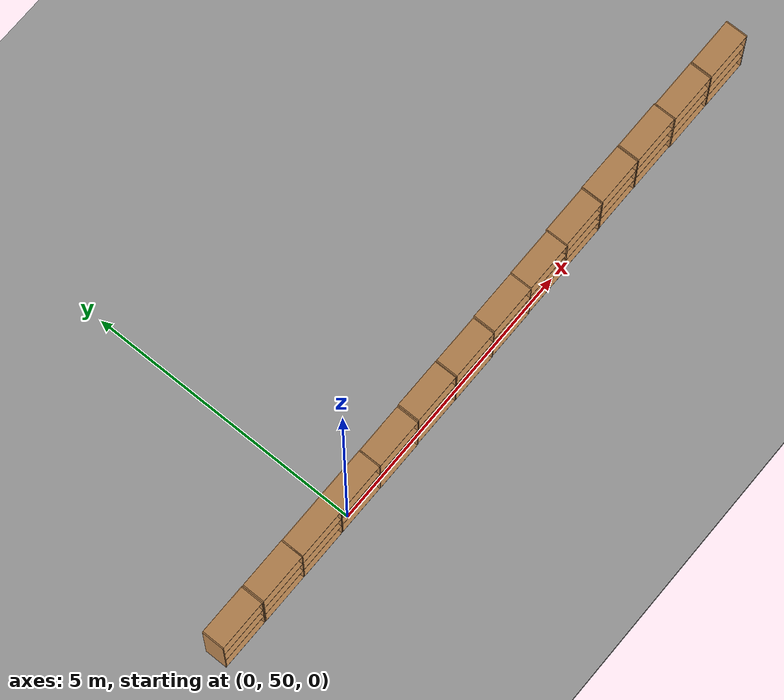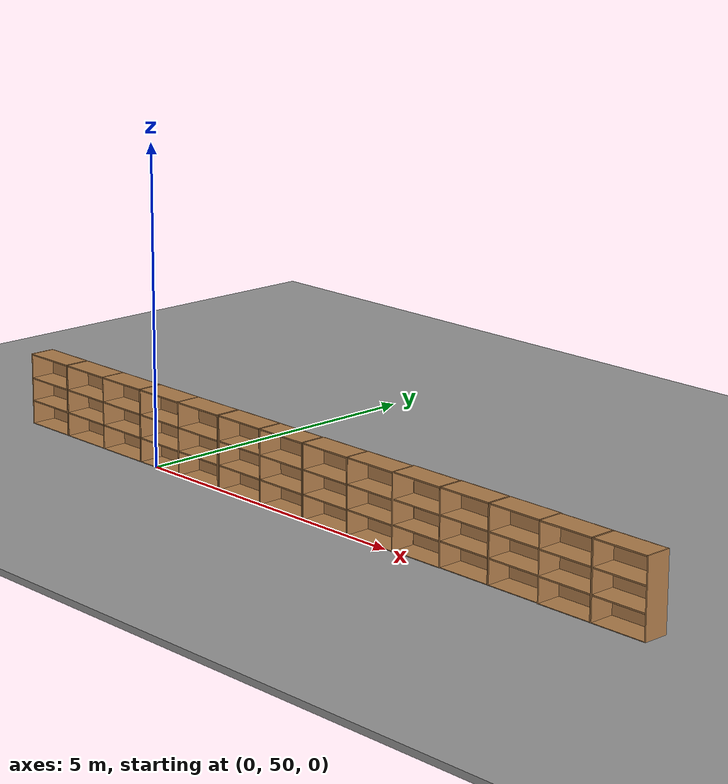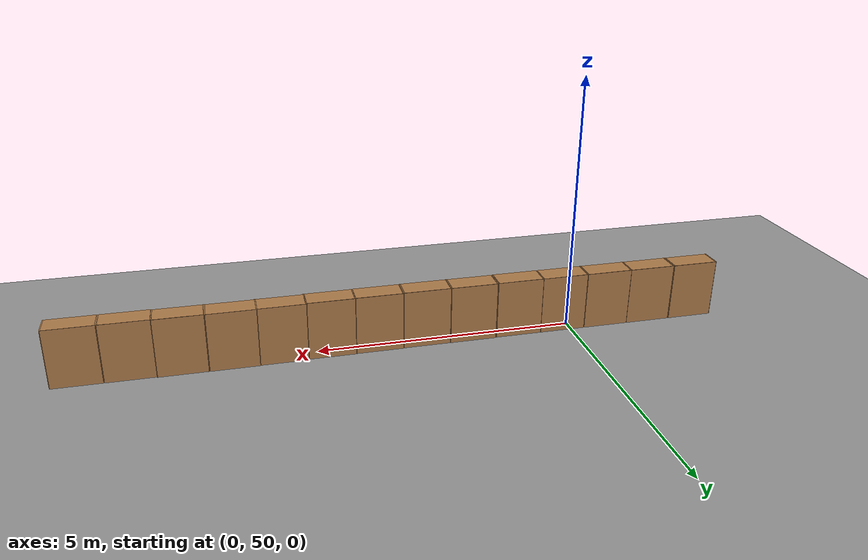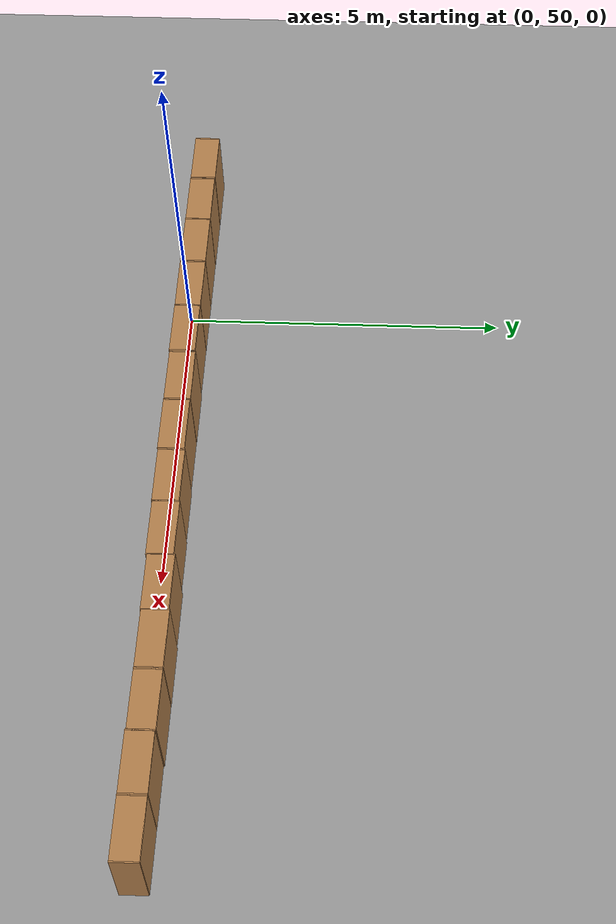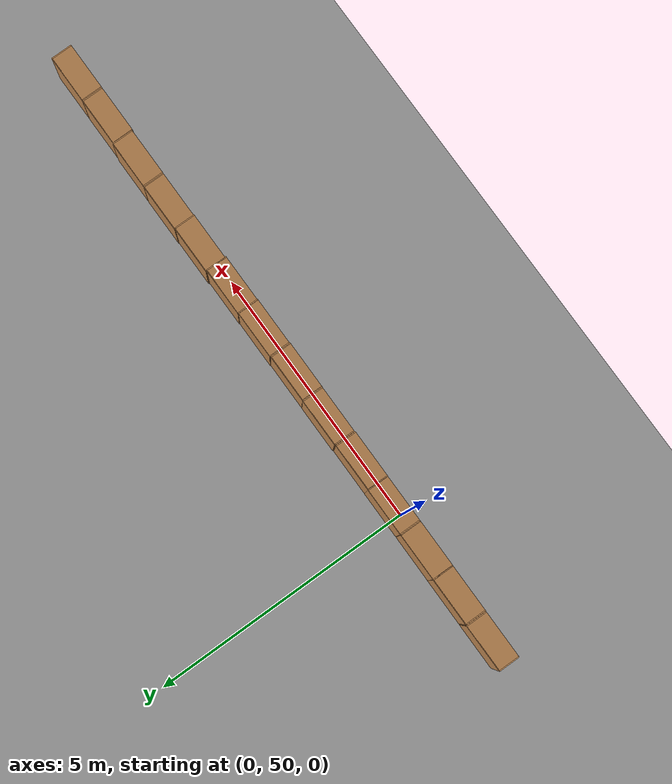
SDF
<sdf version="1.6">
 <world name="default">
  <model name="ground_plane">
   <static>1</static>
   <link name="link">
    <collision name="collision">
     <geometry><plane><normal>0 0 1</normal><size>100 100</size></plane></geometry>
     <surface><friction><ode><mu>100</mu><mu2>50</mu2></ode></friction></surface>
    </collision>
    <visual name="visual">
     <cast_shadows>0</cast_shadows>
     <geometry><plane><normal>0 0 1</normal><size>100 100</size></plane></geometry>
     <material>
      <script><uri>file://media/materials/scripts/gazebo.material</uri><name>Gazebo/Grey</name></script>
     </material>
    </visual>
   </link>
  </model>
  <model name="bookshelf_clone_clone_4">
   <static>1</static>
   <link name="link">
    <inertial><mass>1</mass></inertial>
    <collision name="back">
     <pose>0 0.005 0.6 0 -0 0</pose>
     <geometry><box><size>0.9 0.01 1.2</size></box></geometry>
    </collision>
    <visual name="visual1">
     <pose>0 0.005 0.6 0 -0 0</pose>
     <geometry><box><size>0.9 0.01 1.2</size></box></geometry>
     <material>
      <script><uri>file://media/materials/scripts/gazebo.material</uri><name>Gazebo/Wood</name></script>
     </material>
    </visual>
    <collision name="left_side">
     <pose>0.45 -0.195 0.6 0 -0 0</pose>
     <geometry><box><size>0.02 0.4 1.2</size></box></geometry>
    </collision>
    <visual name="visual2">
     <pose>0.45 -0.195 0.6 0 -0 0</pose>
     <geometry><box><size>0.02 0.4 1.2</size></box></geometry>
     <material>
      <script><uri>file://media/materials/scripts/gazebo.material</uri><name>Gazebo/Wood</name></script>
     </material>
    </visual>
    <collision name="right_side">
     <pose>-0.45 -0.195 0.6 0 -0 0</pose>
     <geometry><box><size>0.02 0.4 1.2</size></box></geometry>
    </collision>
    <visual name="visual3">
     <pose>-0.45 -0.195 0.6 0 -0 0</pose>
     <geometry><box><size>0.02 0.4 1.2</size></box></geometry>
     <material>
      <script><uri>file://media/materials/scripts/gazebo.material</uri><name>Gazebo/Wood</name></script>
     </material>
    </visual>
    <collision name="bottom">
     <pose>0 -0.195 0.03 0 -0 0</pose>
     <geometry><box><size>0.88 0.4 0.06</size></box></geometry>
    </collision>
    <visual name="visual4">
     <pose>0 -0.195 0.03 0 -0 0</pose>
     <geometry><box><size>0.88 0.4 0.06</size></box></geometry>
     <material>
      <script><uri>file://media/materials/scripts/gazebo.material</uri><name>Gazebo/Wood</name></script>
     </material>
    </visual>
    <collision name="top">
     <pose>0 -0.195 1.19 0 -0 0</pose>
     <geometry><box><size>0.88 0.4 0.02</size></box></geometry>
    </collision>
    <visual name="visual5">
     <pose>0 -0.195 1.19 0 -0 0</pose>
     <geometry><box><size>0.88 0.4 0.02</size></box></geometry>
     <material>
      <script><uri>file://media/materials/scripts/gazebo.material</uri><name>Gazebo/Wood</name></script>
     </material>
    </visual>
    <collision name="low_shelf">
     <pose>0 -0.195 0.43 0 -0 0</pose>
     <geometry><box><size>0.88 0.4 0.02</size></box></geometry>
    </collision>
    <visual name="visual6">
     <pose>0 -0.195 0.43 0 -0 0</pose>
     <geometry><box><size>0.88 0.4 0.02</size></box></geometry>
     <material>
      <script><uri>file://media/materials/scripts/gazebo.material</uri><name>Gazebo/Wood</name></script>
     </material>
    </visual>
    <collision name="high_shelf">
     <pose>0 -0.195 0.8 0 -0 0</pose>
     <geometry><box><size>0.88 0.4 0.02</size></box></geometry>
    </collision>
    <visual name="visual7">
     <pose>0 -0.195 0.8 0 -0 0</pose>
     <geometry><box><size>0.88 0.4 0.02</size></box></geometry>
     <material>
      <script><uri>file://media/materials/scripts/gazebo.material</uri><name>Gazebo/Wood</name></script>
     </material>
    </visual>
   </link>
   <pose>-2.53043 50.2921 0 0 -0 0</pose>
  </model>
  <model name="bookshelf_clone_clone_5">
   <static>1</static>
   <link name="link">
    <inertial><mass>1</mass></inertial>
    <collision name="back">
     <pose>0 0.005 0.6 0 -0 0</pose>
     <geometry><box><size>0.9 0.01 1.2</size></box></geometry>
    </collision>
    <visual name="visual1">
     <pose>0 0.005 0.6 0 -0 0</pose>
     <geometry><box><size>0.9 0.01 1.2</size></box></geometry>
     <material>
      <script><uri>file://media/materials/scripts/gazebo.material</uri><name>Gazebo/Wood</name></script>
     </material>
    </visual>
    <collision name="left_side">
     <pose>0.45 -0.195 0.6 0 -0 0</pose>
     <geometry><box><size>0.02 0.4 1.2</size></box></geometry>
    </collision>
    <visual name="visual2">
     <pose>0.45 -0.195 0.6 0 -0 0</pose>
     <geometry><box><size>0.02 0.4 1.2</size></box></geometry>
     <material>
      <script><uri>file://media/materials/scripts/gazebo.material</uri><name>Gazebo/Wood</name></script>
     </material>
    </visual>
    <collision name="right_side">
     <pose>-0.45 -0.195 0.6 0 -0 0</pose>
     <geometry><box><size>0.02 0.4 1.2</size></box></geometry>
    </collision>
    <visual name="visual3">
     <pose>-0.45 -0.195 0.6 0 -0 0</pose>
     <geometry><box><size>0.02 0.4 1.2</size></box></geometry>
     <material>
      <script><uri>file://media/materials/scripts/gazebo.material</uri><name>Gazebo/Wood</name></script>
     </material>
    </visual>
    <collision name="bottom">
     <pose>0 -0.195 0.03 0 -0 0</pose>
     <geometry><box><size>0.88 0.4 0.06</size></box></geometry>
    </collision>
    <visual name="visual4">
     <pose>0 -0.195 0.03 0 -0 0</pose>
     <geometry><box><size>0.88 0.4 0.06</size></box></geometry>
     <material>
      <script><uri>file://media/materials/scripts/gazebo.material</uri><name>Gazebo/Wood</name></script>
     </material>
    </visual>
    <collision name="top">
     <pose>0 -0.195 1.19 0 -0 0</pose>
     <geometry><box><size>0.88 0.4 0.02</size></box></geometry>
    </collision>
    <visual name="visual5">
     <pose>0 -0.195 1.19 0 -0 0</pose>
     <geometry><box><size>0.88 0.4 0.02</size></box></geometry>
     <material>
      <script><uri>file://media/materials/scripts/gazebo.material</uri><name>Gazebo/Wood</name></script>
     </material>
    </visual>
    <collision name="low_shelf">
     <pose>0 -0.195 0.43 0 -0 0</pose>
     <geometry><box><size>0.88 0.4 0.02</size></box></geometry>
    </collision>
    <visual name="visual6">
     <pose>0 -0.195 0.43 0 -0 0</pose>
     <geometry><box><size>0.88 0.4 0.02</size></box></geometry>
     <material>
      <script><uri>file://media/materials/scripts/gazebo.material</uri><name>Gazebo/Wood</name></script>
     </material>
    </visual>
    <collision name="high_shelf">
     <pose>0 -0.195 0.8 0 -0 0</pose>
     <geometry><box><size>0.88 0.4 0.02</size></box></geometry>
    </collision>
    <visual name="visual7">
     <pose>0 -0.195 0.8 0 -0 0</pose>
     <geometry><box><size>0.88 0.4 0.02</size></box></geometry>
     <material>
      <script><uri>file://media/materials/scripts/gazebo.material</uri><name>Gazebo/Wood</name></script>
     </material>
    </visual>
   </link>
   <pose>-1.60843 50.2898 0 0 -0 0</pose>
  </model>
  <model name="bookshelf_clone_clone_6">
   <static>1</static>
   <link name="link">
    <inertial><mass>1</mass></inertial>
    <collision name="back">
     <pose>0 0.005 0.6 0 -0 0</pose>
     <geometry><box><size>0.9 0.01 1.2</size></box></geometry>
    </collision>
    <visual name="visual1">
     <pose>0 0.005 0.6 0 -0 0</pose>
     <geometry><box><size>0.9 0.01 1.2</size></box></geometry>
     <material>
      <script><uri>file://media/materials/scripts/gazebo.material</uri><name>Gazebo/Wood</name></script>
     </material>
    </visual>
    <collision name="left_side">
     <pose>0.45 -0.195 0.6 0 -0 0</pose>
     <geometry><box><size>0.02 0.4 1.2</size></box></geometry>
    </collision>
    <visual name="visual2">
     <pose>0.45 -0.195 0.6 0 -0 0</pose>
     <geometry><box><size>0.02 0.4 1.2</size></box></geometry>
     <material>
      <script><uri>file://media/materials/scripts/gazebo.material</uri><name>Gazebo/Wood</name></script>
     </material>
    </visual>
    <collision name="right_side">
     <pose>-0.45 -0.195 0.6 0 -0 0</pose>
     <geometry><box><size>0.02 0.4 1.2</size></box></geometry>
    </collision>
    <visual name="visual3">
     <pose>-0.45 -0.195 0.6 0 -0 0</pose>
     <geometry><box><size>0.02 0.4 1.2</size></box></geometry>
     <material>
      <script><uri>file://media/materials/scripts/gazebo.material</uri><name>Gazebo/Wood</name></script>
     </material>
    </visual>
    <collision name="bottom">
     <pose>0 -0.195 0.03 0 -0 0</pose>
     <geometry><box><size>0.88 0.4 0.06</size></box></geometry>
    </collision>
    <visual name="visual4">
     <pose>0 -0.195 0.03 0 -0 0</pose>
     <geometry><box><size>0.88 0.4 0.06</size></box></geometry>
     <material>
      <script><uri>file://media/materials/scripts/gazebo.material</uri><name>Gazebo/Wood</name></script>
     </material>
    </visual>
    <collision name="top">
     <pose>0 -0.195 1.19 0 -0 0</pose>
     <geometry><box><size>0.88 0.4 0.02</size></box></geometry>
    </collision>
    <visual name="visual5">
     <pose>0 -0.195 1.19 0 -0 0</pose>
     <geometry><box><size>0.88 0.4 0.02</size></box></geometry>
     <material>
      <script><uri>file://media/materials/scripts/gazebo.material</uri><name>Gazebo/Wood</name></script>
     </material>
    </visual>
    <collision name="low_shelf">
     <pose>0 -0.195 0.43 0 -0 0</pose>
     <geometry><box><size>0.88 0.4 0.02</size></box></geometry>
    </collision>
    <visual name="visual6">
     <pose>0 -0.195 0.43 0 -0 0</pose>
     <geometry><box><size>0.88 0.4 0.02</size></box></geometry>
     <material>
      <script><uri>file://media/materials/scripts/gazebo.material</uri><name>Gazebo/Wood</name></script>
     </material>
    </visual>
    <collision name="high_shelf">
     <pose>0 -0.195 0.8 0 -0 0</pose>
     <geometry><box><size>0.88 0.4 0.02</size></box></geometry>
    </collision>
    <visual name="visual7">
     <pose>0 -0.195 0.8 0 -0 0</pose>
     <geometry><box><size>0.88 0.4 0.02</size></box></geometry>
     <material>
      <script><uri>file://media/materials/scripts/gazebo.material</uri><name>Gazebo/Wood</name></script>
     </material>
    </visual>
   </link>
   <pose>-0.705048 50.2874 0 0 -0 0</pose>
  </model>
  <model name="bookshelf_clone_clone_7">
   <static>1</static>
   <link name="link">
    <inertial><mass>1</mass></inertial>
    <collision name="back">
     <pose>0 0.005 0.6 0 -0 0</pose>
     <geometry><box><size>0.9 0.01 1.2</size></box></geometry>
    </collision>
    <visual name="visual1">
     <pose>0 0.005 0.6 0 -0 0</pose>
     <geometry><box><size>0.9 0.01 1.2</size></box></geometry>
     <material>
      <script><uri>file://media/materials/scripts/gazebo.material</uri><name>Gazebo/Wood</name></script>
     </material>
    </visual>
    <collision name="left_side">
     <pose>0.45 -0.195 0.6 0 -0 0</pose>
     <geometry><box><size>0.02 0.4 1.2</size></box></geometry>
    </collision>
    <visual name="visual2">
     <pose>0.45 -0.195 0.6 0 -0 0</pose>
     <geometry><box><size>0.02 0.4 1.2</size></box></geometry>
     <material>
      <script><uri>file://media/materials/scripts/gazebo.material</uri><name>Gazebo/Wood</name></script>
     </material>
    </visual>
    <collision name="right_side">
     <pose>-0.45 -0.195 0.6 0 -0 0</pose>
     <geometry><box><size>0.02 0.4 1.2</size></box></geometry>
    </collision>
    <visual name="visual3">
     <pose>-0.45 -0.195 0.6 0 -0 0</pose>
     <geometry><box><size>0.02 0.4 1.2</size></box></geometry>
     <material>
      <script><uri>file://media/materials/scripts/gazebo.material</uri><name>Gazebo/Wood</name></script>
     </material>
    </visual>
    <collision name="bottom">
     <pose>0 -0.195 0.03 0 -0 0</pose>
     <geometry><box><size>0.88 0.4 0.06</size></box></geometry>
    </collision>
    <visual name="visual4">
     <pose>0 -0.195 0.03 0 -0 0</pose>
     <geometry><box><size>0.88 0.4 0.06</size></box></geometry>
     <material>
      <script><uri>file://media/materials/scripts/gazebo.material</uri><name>Gazebo/Wood</name></script>
     </material>
    </visual>
    <collision name="top">
     <pose>0 -0.195 1.19 0 -0 0</pose>
     <geometry><box><size>0.88 0.4 0.02</size></box></geometry>
    </collision>
    <visual name="visual5">
     <pose>0 -0.195 1.19 0 -0 0</pose>
     <geometry><box><size>0.88 0.4 0.02</size></box></geometry>
     <material>
      <script><uri>file://media/materials/scripts/gazebo.material</uri><name>Gazebo/Wood</name></script>
     </material>
    </visual>
    <collision name="low_shelf">
     <pose>0 -0.195 0.43 0 -0 0</pose>
     <geometry><box><size>0.88 0.4 0.02</size></box></geometry>
    </collision>
    <visual name="visual6">
     <pose>0 -0.195 0.43 0 -0 0</pose>
     <geometry><box><size>0.88 0.4 0.02</size></box></geometry>
     <material>
      <script><uri>file://media/materials/scripts/gazebo.material</uri><name>Gazebo/Wood</name></script>
     </material>
    </visual>
    <collision name="high_shelf">
     <pose>0 -0.195 0.8 0 -0 0</pose>
     <geometry><box><size>0.88 0.4 0.02</size></box></geometry>
    </collision>
    <visual name="visual7">
     <pose>0 -0.195 0.8 0 -0 0</pose>
     <geometry><box><size>0.88 0.4 0.02</size></box></geometry>
     <material>
      <script><uri>file://media/materials/scripts/gazebo.material</uri><name>Gazebo/Wood</name></script>
     </material>
    </visual>
   </link>
   <pose>0.208745 50.2879 0 0 -0 0</pose>
  </model>
  <model name="bookshelf_clone_clone_8">
   <static>1</static>
   <link name="link">
    <inertial><mass>1</mass></inertial>
    <collision name="back">
     <pose>0 0.005 0.6 0 -0 0</pose>
     <geometry><box><size>0.9 0.01 1.2</size></box></geometry>
    </collision>
    <visual name="visual1">
     <pose>0 0.005 0.6 0 -0 0</pose>
     <geometry><box><size>0.9 0.01 1.2</size></box></geometry>
     <material>
      <script><uri>file://media/materials/scripts/gazebo.material</uri><name>Gazebo/Wood</name></script>
     </material>
    </visual>
    <collision name="left_side">
     <pose>0.45 -0.195 0.6 0 -0 0</pose>
     <geometry><box><size>0.02 0.4 1.2</size></box></geometry>
    </collision>
    <visual name="visual2">
     <pose>0.45 -0.195 0.6 0 -0 0</pose>
     <geometry><box><size>0.02 0.4 1.2</size></box></geometry>
     <material>
      <script><uri>file://media/materials/scripts/gazebo.material</uri><name>Gazebo/Wood</name></script>
     </material>
    </visual>
    <collision name="right_side">
     <pose>-0.45 -0.195 0.6 0 -0 0</pose>
     <geometry><box><size>0.02 0.4 1.2</size></box></geometry>
    </collision>
    <visual name="visual3">
     <pose>-0.45 -0.195 0.6 0 -0 0</pose>
     <geometry><box><size>0.02 0.4 1.2</size></box></geometry>
     <material>
      <script><uri>file://media/materials/scripts/gazebo.material</uri><name>Gazebo/Wood</name></script>
     </material>
    </visual>
    <collision name="bottom">
     <pose>0 -0.195 0.03 0 -0 0</pose>
     <geometry><box><size>0.88 0.4 0.06</size></box></geometry>
    </collision>
    <visual name="visual4">
     <pose>0 -0.195 0.03 0 -0 0</pose>
     <geometry><box><size>0.88 0.4 0.06</size></box></geometry>
     <material>
      <script><uri>file://media/materials/scripts/gazebo.material</uri><name>Gazebo/Wood</name></script>
     </material>
    </visual>
    <collision name="top">
     <pose>0 -0.195 1.19 0 -0 0</pose>
     <geometry><box><size>0.88 0.4 0.02</size></box></geometry>
    </collision>
    <visual name="visual5">
     <pose>0 -0.195 1.19 0 -0 0</pose>
     <geometry><box><size>0.88 0.4 0.02</size></box></geometry>
     <material>
      <script><uri>file://media/materials/scripts/gazebo.material</uri><name>Gazebo/Wood</name></script>
     </material>
    </visual>
    <collision name="low_shelf">
     <pose>0 -0.195 0.43 0 -0 0</pose>
     <geometry><box><size>0.88 0.4 0.02</size></box></geometry>
    </collision>
    <visual name="visual6">
     <pose>0 -0.195 0.43 0 -0 0</pose>
     <geometry><box><size>0.88 0.4 0.02</size></box></geometry>
     <material>
      <script><uri>file://media/materials/scripts/gazebo.material</uri><name>Gazebo/Wood</name></script>
     </material>
    </visual>
    <collision name="high_shelf">
     <pose>0 -0.195 0.8 0 -0 0</pose>
     <geometry><box><size>0.88 0.4 0.02</size></box></geometry>
    </collision>
    <visual name="visual7">
     <pose>0 -0.195 0.8 0 -0 0</pose>
     <geometry><box><size>0.88 0.4 0.02</size></box></geometry>
     <material>
      <script><uri>file://media/materials/scripts/gazebo.material</uri><name>Gazebo/Wood</name></script>
     </material>
    </visual>
   </link>
   <pose>1.1123 50.2856 0 0 -0 0</pose>
  </model>
  <model name="bookshelf_clone_clone_9">
   <static>1</static>
   <link name="link">
    <inertial><mass>1</mass></inertial>
    <collision name="back">
     <pose>0 0.005 0.6 0 -0 0</pose>
     <geometry><box><size>0.9 0.01 1.2</size></box></geometry>
    </collision>
    <visual name="visual1">
     <pose>0 0.005 0.6 0 -0 0</pose>
     <geometry><box><size>0.9 0.01 1.2</size></box></geometry>
     <material>
      <script><uri>file://media/materials/scripts/gazebo.material</uri><name>Gazebo/Wood</name></script>
     </material>
    </visual>
    <collision name="left_side">
     <pose>0.45 -0.195 0.6 0 -0 0</pose>
     <geometry><box><size>0.02 0.4 1.2</size></box></geometry>
    </collision>
    <visual name="visual2">
     <pose>0.45 -0.195 0.6 0 -0 0</pose>
     <geometry><box><size>0.02 0.4 1.2</size></box></geometry>
     <material>
      <script><uri>file://media/materials/scripts/gazebo.material</uri><name>Gazebo/Wood</name></script>
     </material>
    </visual>
    <collision name="right_side">
     <pose>-0.45 -0.195 0.6 0 -0 0</pose>
     <geometry><box><size>0.02 0.4 1.2</size></box></geometry>
    </collision>
    <visual name="visual3">
     <pose>-0.45 -0.195 0.6 0 -0 0</pose>
     <geometry><box><size>0.02 0.4 1.2</size></box></geometry>
     <material>
      <script><uri>file://media/materials/scripts/gazebo.material</uri><name>Gazebo/Wood</name></script>
     </material>
    </visual>
    <collision name="bottom">
     <pose>0 -0.195 0.03 0 -0 0</pose>
     <geometry><box><size>0.88 0.4 0.06</size></box></geometry>
    </collision>
    <visual name="visual4">
     <pose>0 -0.195 0.03 0 -0 0</pose>
     <geometry><box><size>0.88 0.4 0.06</size></box></geometry>
     <material>
      <script><uri>file://media/materials/scripts/gazebo.material</uri><name>Gazebo/Wood</name></script>
     </material>
    </visual>
    <collision name="top">
     <pose>0 -0.195 1.19 0 -0 0</pose>
     <geometry><box><size>0.88 0.4 0.02</size></box></geometry>
    </collision>
    <visual name="visual5">
     <pose>0 -0.195 1.19 0 -0 0</pose>
     <geometry><box><size>0.88 0.4 0.02</size></box></geometry>
     <material>
      <script><uri>file://media/materials/scripts/gazebo.material</uri><name>Gazebo/Wood</name></script>
     </material>
    </visual>
    <collision name="low_shelf">
     <pose>0 -0.195 0.43 0 -0 0</pose>
     <geometry><box><size>0.88 0.4 0.02</size></box></geometry>
    </collision>
    <visual name="visual6">
     <pose>0 -0.195 0.43 0 -0 0</pose>
     <geometry><box><size>0.88 0.4 0.02</size></box></geometry>
     <material>
      <script><uri>file://media/materials/scripts/gazebo.material</uri><name>Gazebo/Wood</name></script>
     </material>
    </visual>
    <collision name="high_shelf">
     <pose>0 -0.195 0.8 0 -0 0</pose>
     <geometry><box><size>0.88 0.4 0.02</size></box></geometry>
    </collision>
    <visual name="visual7">
     <pose>0 -0.195 0.8 0 -0 0</pose>
     <geometry><box><size>0.88 0.4 0.02</size></box></geometry>
     <material>
      <script><uri>file://media/materials/scripts/gazebo.material</uri><name>Gazebo/Wood</name></script>
     </material>
    </visual>
   </link>
   <pose>2.03547 50.2951 0 0 -0 0</pose>
  </model>
  <model name="bookshelf_clone_clone_10">
   <static>1</static>
   <link name="link">
    <inertial><mass>1</mass></inertial>
    <collision name="back">
     <pose>0 0.005 0.6 0 -0 0</pose>
     <geometry><box><size>0.9 0.01 1.2</size></box></geometry>
    </collision>
    <visual name="visual1">
     <pose>0 0.005 0.6 0 -0 0</pose>
     <geometry><box><size>0.9 0.01 1.2</size></box></geometry>
     <material>
      <script><uri>file://media/materials/scripts/gazebo.material</uri><name>Gazebo/Wood</name></script>
     </material>
    </visual>
    <collision name="left_side">
     <pose>0.45 -0.195 0.6 0 -0 0</pose>
     <geometry><box><size>0.02 0.4 1.2</size></box></geometry>
    </collision>
    <visual name="visual2">
     <pose>0.45 -0.195 0.6 0 -0 0</pose>
     <geometry><box><size>0.02 0.4 1.2</size></box></geometry>
     <material>
      <script><uri>file://media/materials/scripts/gazebo.material</uri><name>Gazebo/Wood</name></script>
     </material>
    </visual>
    <collision name="right_side">
     <pose>-0.45 -0.195 0.6 0 -0 0</pose>
     <geometry><box><size>0.02 0.4 1.2</size></box></geometry>
    </collision>
    <visual name="visual3">
     <pose>-0.45 -0.195 0.6 0 -0 0</pose>
     <geometry><box><size>0.02 0.4 1.2</size></box></geometry>
     <material>
      <script><uri>file://media/materials/scripts/gazebo.material</uri><name>Gazebo/Wood</name></script>
     </material>
    </visual>
    <collision name="bottom">
     <pose>0 -0.195 0.03 0 -0 0</pose>
     <geometry><box><size>0.88 0.4 0.06</size></box></geometry>
    </collision>
    <visual name="visual4">
     <pose>0 -0.195 0.03 0 -0 0</pose>
     <geometry><box><size>0.88 0.4 0.06</size></box></geometry>
     <material>
      <script><uri>file://media/materials/scripts/gazebo.material</uri><name>Gazebo/Wood</name></script>
     </material>
    </visual>
    <collision name="top">
     <pose>0 -0.195 1.19 0 -0 0</pose>
     <geometry><box><size>0.88 0.4 0.02</size></box></geometry>
    </collision>
    <visual name="visual5">
     <pose>0 -0.195 1.19 0 -0 0</pose>
     <geometry><box><size>0.88 0.4 0.02</size></box></geometry>
     <material>
      <script><uri>file://media/materials/scripts/gazebo.material</uri><name>Gazebo/Wood</name></script>
     </material>
    </visual>
    <collision name="low_shelf">
     <pose>0 -0.195 0.43 0 -0 0</pose>
     <geometry><box><size>0.88 0.4 0.02</size></box></geometry>
    </collision>
    <visual name="visual6">
     <pose>0 -0.195 0.43 0 -0 0</pose>
     <geometry><box><size>0.88 0.4 0.02</size></box></geometry>
     <material>
      <script><uri>file://media/materials/scripts/gazebo.material</uri><name>Gazebo/Wood</name></script>
     </material>
    </visual>
    <collision name="high_shelf">
     <pose>0 -0.195 0.8 0 -0 0</pose>
     <geometry><box><size>0.88 0.4 0.02</size></box></geometry>
    </collision>
    <visual name="visual7">
     <pose>0 -0.195 0.8 0 -0 0</pose>
     <geometry><box><size>0.88 0.4 0.02</size></box></geometry>
     <material>
      <script><uri>file://media/materials/scripts/gazebo.material</uri><name>Gazebo/Wood</name></script>
     </material>
    </visual>
   </link>
   <pose>2.94899 50.2925 0 0 -0 0</pose>
  </model>
  <model name="bookshelf_clone_clone_11">
   <static>1</static>
   <link name="link">
    <inertial><mass>1</mass></inertial>
    <collision name="back">
     <pose>0 0.005 0.6 0 -0 0</pose>
     <geometry><box><size>0.9 0.01 1.2</size></box></geometry>
    </collision>
    <visual name="visual1">
     <pose>0 0.005 0.6 0 -0 0</pose>
     <geometry><box><size>0.9 0.01 1.2</size></box></geometry>
     <material>
      <script><uri>file://media/materials/scripts/gazebo.material</uri><name>Gazebo/Wood</name></script>
     </material>
    </visual>
    <collision name="left_side">
     <pose>0.45 -0.195 0.6 0 -0 0</pose>
     <geometry><box><size>0.02 0.4 1.2</size></box></geometry>
    </collision>
    <visual name="visual2">
     <pose>0.45 -0.195 0.6 0 -0 0</pose>
     <geometry><box><size>0.02 0.4 1.2</size></box></geometry>
     <material>
      <script><uri>file://media/materials/scripts/gazebo.material</uri><name>Gazebo/Wood</name></script>
     </material>
    </visual>
    <collision name="right_side">
     <pose>-0.45 -0.195 0.6 0 -0 0</pose>
     <geometry><box><size>0.02 0.4 1.2</size></box></geometry>
    </collision>
    <visual name="visual3">
     <pose>-0.45 -0.195 0.6 0 -0 0</pose>
     <geometry><box><size>0.02 0.4 1.2</size></box></geometry>
     <material>
      <script><uri>file://media/materials/scripts/gazebo.material</uri><name>Gazebo/Wood</name></script>
     </material>
    </visual>
    <collision name="bottom">
     <pose>0 -0.195 0.03 0 -0 0</pose>
     <geometry><box><size>0.88 0.4 0.06</size></box></geometry>
    </collision>
    <visual name="visual4">
     <pose>0 -0.195 0.03 0 -0 0</pose>
     <geometry><box><size>0.88 0.4 0.06</size></box></geometry>
     <material>
      <script><uri>file://media/materials/scripts/gazebo.material</uri><name>Gazebo/Wood</name></script>
     </material>
    </visual>
    <collision name="top">
     <pose>0 -0.195 1.19 0 -0 0</pose>
     <geometry><box><size>0.88 0.4 0.02</size></box></geometry>
    </collision>
    <visual name="visual5">
     <pose>0 -0.195 1.19 0 -0 0</pose>
     <geometry><box><size>0.88 0.4 0.02</size></box></geometry>
     <material>
      <script><uri>file://media/materials/scripts/gazebo.material</uri><name>Gazebo/Wood</name></script>
     </material>
    </visual>
    <collision name="low_shelf">
     <pose>0 -0.195 0.43 0 -0 0</pose>
     <geometry><box><size>0.88 0.4 0.02</size></box></geometry>
    </collision>
    <visual name="visual6">
     <pose>0 -0.195 0.43 0 -0 0</pose>
     <geometry><box><size>0.88 0.4 0.02</size></box></geometry>
     <material>
      <script><uri>file://media/materials/scripts/gazebo.material</uri><name>Gazebo/Wood</name></script>
     </material>
    </visual>
    <collision name="high_shelf">
     <pose>0 -0.195 0.8 0 -0 0</pose>
     <geometry><box><size>0.88 0.4 0.02</size></box></geometry>
    </collision>
    <visual name="visual7">
     <pose>0 -0.195 0.8 0 -0 0</pose>
     <geometry><box><size>0.88 0.4 0.02</size></box></geometry>
     <material>
      <script><uri>file://media/materials/scripts/gazebo.material</uri><name>Gazebo/Wood</name></script>
     </material>
    </visual>
   </link>
   <pose>3.86479 50.3016 0 0 -0 0</pose>
  </model>
  <model name="bookshelf_clone_clone_12">
   <static>1</static>
   <link name="link">
    <inertial><mass>1</mass></inertial>
    <collision name="back">
     <pose>0 0.005 0.6 0 -0 0</pose>
     <geometry><box><size>0.9 0.01 1.2</size></box></geometry>
    </collision>
    <visual name="visual1">
     <pose>0 0.005 0.6 0 -0 0</pose>
     <geometry><box><size>0.9 0.01 1.2</size></box></geometry>
     <material>
      <script><uri>file://media/materials/scripts/gazebo.material</uri><name>Gazebo/Wood</name></script>
     </material>
    </visual>
    <collision name="left_side">
     <pose>0.45 -0.195 0.6 0 -0 0</pose>
     <geometry><box><size>0.02 0.4 1.2</size></box></geometry>
    </collision>
    <visual name="visual2">
     <pose>0.45 -0.195 0.6 0 -0 0</pose>
     <geometry><box><size>0.02 0.4 1.2</size></box></geometry>
     <material>
      <script><uri>file://media/materials/scripts/gazebo.material</uri><name>Gazebo/Wood</name></script>
     </material>
    </visual>
    <collision name="right_side">
     <pose>-0.45 -0.195 0.6 0 -0 0</pose>
     <geometry><box><size>0.02 0.4 1.2</size></box></geometry>
    </collision>
    <visual name="visual3">
     <pose>-0.45 -0.195 0.6 0 -0 0</pose>
     <geometry><box><size>0.02 0.4 1.2</size></box></geometry>
     <material>
      <script><uri>file://media/materials/scripts/gazebo.material</uri><name>Gazebo/Wood</name></script>
     </material>
    </visual>
    <collision name="bottom">
     <pose>0 -0.195 0.03 0 -0 0</pose>
     <geometry><box><size>0.88 0.4 0.06</size></box></geometry>
    </collision>
    <visual name="visual4">
     <pose>0 -0.195 0.03 0 -0 0</pose>
     <geometry><box><size>0.88 0.4 0.06</size></box></geometry>
     <material>
      <script><uri>file://media/materials/scripts/gazebo.material</uri><name>Gazebo/Wood</name></script>
     </material>
    </visual>
    <collision name="top">
     <pose>0 -0.195 1.19 0 -0 0</pose>
     <geometry><box><size>0.88 0.4 0.02</size></box></geometry>
    </collision>
    <visual name="visual5">
     <pose>0 -0.195 1.19 0 -0 0</pose>
     <geometry><box><size>0.88 0.4 0.02</size></box></geometry>
     <material>
      <script><uri>file://media/materials/scripts/gazebo.material</uri><name>Gazebo/Wood</name></script>
     </material>
    </visual>
    <collision name="low_shelf">
     <pose>0 -0.195 0.43 0 -0 0</pose>
     <geometry><box><size>0.88 0.4 0.02</size></box></geometry>
    </collision>
    <visual name="visual6">
     <pose>0 -0.195 0.43 0 -0 0</pose>
     <geometry><box><size>0.88 0.4 0.02</size></box></geometry>
     <material>
      <script><uri>file://media/materials/scripts/gazebo.material</uri><name>Gazebo/Wood</name></script>
     </material>
    </visual>
    <collision name="high_shelf">
     <pose>0 -0.195 0.8 0 -0 0</pose>
     <geometry><box><size>0.88 0.4 0.02</size></box></geometry>
    </collision>
    <visual name="visual7">
     <pose>0 -0.195 0.8 0 -0 0</pose>
     <geometry><box><size>0.88 0.4 0.02</size></box></geometry>
     <material>
      <script><uri>file://media/materials/scripts/gazebo.material</uri><name>Gazebo/Wood</name></script>
     </material>
    </visual>
   </link>
   <pose>4.76824 50.3098 0 0 -0 0</pose>
  </model>
  <model name="bookshelf_clone_clone_13">
   <static>1</static>
   <link name="link">
    <inertial><mass>1</mass></inertial>
    <collision name="back">
     <pose>0 0.005 0.6 0 -0 0</pose>
     <geometry><box><size>0.9 0.01 1.2</size></box></geometry>
    </collision>
    <visual name="visual1">
     <pose>0 0.005 0.6 0 -0 0</pose>
     <geometry><box><size>0.9 0.01 1.2</size></box></geometry>
     <material>
      <script><uri>file://media/materials/scripts/gazebo.material</uri><name>Gazebo/Wood</name></script>
     </material>
    </visual>
    <collision name="left_side">
     <pose>0.45 -0.195 0.6 0 -0 0</pose>
     <geometry><box><size>0.02 0.4 1.2</size></box></geometry>
    </collision>
    <visual name="visual2">
     <pose>0.45 -0.195 0.6 0 -0 0</pose>
     <geometry><box><size>0.02 0.4 1.2</size></box></geometry>
     <material>
      <script><uri>file://media/materials/scripts/gazebo.material</uri><name>Gazebo/Wood</name></script>
     </material>
    </visual>
    <collision name="right_side">
     <pose>-0.45 -0.195 0.6 0 -0 0</pose>
     <geometry><box><size>0.02 0.4 1.2</size></box></geometry>
    </collision>
    <visual name="visual3">
     <pose>-0.45 -0.195 0.6 0 -0 0</pose>
     <geometry><box><size>0.02 0.4 1.2</size></box></geometry>
     <material>
      <script><uri>file://media/materials/scripts/gazebo.material</uri><name>Gazebo/Wood</name></script>
     </material>
    </visual>
    <collision name="bottom">
     <pose>0 -0.195 0.03 0 -0 0</pose>
     <geometry><box><size>0.88 0.4 0.06</size></box></geometry>
    </collision>
    <visual name="visual4">
     <pose>0 -0.195 0.03 0 -0 0</pose>
     <geometry><box><size>0.88 0.4 0.06</size></box></geometry>
     <material>
      <script><uri>file://media/materials/scripts/gazebo.material</uri><name>Gazebo/Wood</name></script>
     </material>
    </visual>
    <collision name="top">
     <pose>0 -0.195 1.19 0 -0 0</pose>
     <geometry><box><size>0.88 0.4 0.02</size></box></geometry>
    </collision>
    <visual name="visual5">
     <pose>0 -0.195 1.19 0 -0 0</pose>
     <geometry><box><size>0.88 0.4 0.02</size></box></geometry>
     <material>
      <script><uri>file://media/materials/scripts/gazebo.material</uri><name>Gazebo/Wood</name></script>
     </material>
    </visual>
    <collision name="low_shelf">
     <pose>0 -0.195 0.43 0 -0 0</pose>
     <geometry><box><size>0.88 0.4 0.02</size></box></geometry>
    </collision>
    <visual name="visual6">
     <pose>0 -0.195 0.43 0 -0 0</pose>
     <geometry><box><size>0.88 0.4 0.02</size></box></geometry>
     <material>
      <script><uri>file://media/materials/scripts/gazebo.material</uri><name>Gazebo/Wood</name></script>
     </material>
    </visual>
    <collision name="high_shelf">
     <pose>0 -0.195 0.8 0 -0 0</pose>
     <geometry><box><size>0.88 0.4 0.02</size></box></geometry>
    </collision>
    <visual name="visual7">
     <pose>0 -0.195 0.8 0 -0 0</pose>
     <geometry><box><size>0.88 0.4 0.02</size></box></geometry>
     <material>
      <script><uri>file://media/materials/scripts/gazebo.material</uri><name>Gazebo/Wood</name></script>
     </material>
    </visual>
   </link>
   <pose>5.66398 50.3301 0 0 -0 0</pose>
  </model>
  <model name="bookshelf_clone_clone_14">
   <static>1</static>
   <link name="link">
    <inertial><mass>1</mass></inertial>
    <collision name="back">
     <pose>0 0.005 0.6 0 -0 0</pose>
     <geometry><box><size>0.9 0.01 1.2</size></box></geometry>
    </collision>
    <visual name="visual1">
     <pose>0 0.005 0.6 0 -0 0</pose>
     <geometry><box><size>0.9 0.01 1.2</size></box></geometry>
     <material>
      <script><uri>file://media/materials/scripts/gazebo.material</uri><name>Gazebo/Wood</name></script>
     </material>
    </visual>
    <collision name="left_side">
     <pose>0.45 -0.195 0.6 0 -0 0</pose>
     <geometry><box><size>0.02 0.4 1.2</size></box></geometry>
    </collision>
    <visual name="visual2">
     <pose>0.45 -0.195 0.6 0 -0 0</pose>
     <geometry><box><size>0.02 0.4 1.2</size></box></geometry>
     <material>
      <script><uri>file://media/materials/scripts/gazebo.material</uri><name>Gazebo/Wood</name></script>
     </material>
    </visual>
    <collision name="right_side">
     <pose>-0.45 -0.195 0.6 0 -0 0</pose>
     <geometry><box><size>0.02 0.4 1.2</size></box></geometry>
    </collision>
    <visual name="visual3">
     <pose>-0.45 -0.195 0.6 0 -0 0</pose>
     <geometry><box><size>0.02 0.4 1.2</size></box></geometry>
     <material>
      <script><uri>file://media/materials/scripts/gazebo.material</uri><name>Gazebo/Wood</name></script>
     </material>
    </visual>
    <collision name="bottom">
     <pose>0 -0.195 0.03 0 -0 0</pose>
     <geometry><box><size>0.88 0.4 0.06</size></box></geometry>
    </collision>
    <visual name="visual4">
     <pose>0 -0.195 0.03 0 -0 0</pose>
     <geometry><box><size>0.88 0.4 0.06</size></box></geometry>
     <material>
      <script><uri>file://media/materials/scripts/gazebo.material</uri><name>Gazebo/Wood</name></script>
     </material>
    </visual>
    <collision name="top">
     <pose>0 -0.195 1.19 0 -0 0</pose>
     <geometry><box><size>0.88 0.4 0.02</size></box></geometry>
    </collision>
    <visual name="visual5">
     <pose>0 -0.195 1.19 0 -0 0</pose>
     <geometry><box><size>0.88 0.4 0.02</size></box></geometry>
     <material>
      <script><uri>file://media/materials/scripts/gazebo.material</uri><name>Gazebo/Wood</name></script>
     </material>
    </visual>
    <collision name="low_shelf">
     <pose>0 -0.195 0.43 0 -0 0</pose>
     <geometry><box><size>0.88 0.4 0.02</size></box></geometry>
    </collision>
    <visual name="visual6">
     <pose>0 -0.195 0.43 0 -0 0</pose>
     <geometry><box><size>0.88 0.4 0.02</size></box></geometry>
     <material>
      <script><uri>file://media/materials/scripts/gazebo.material</uri><name>Gazebo/Wood</name></script>
     </material>
    </visual>
    <collision name="high_shelf">
     <pose>0 -0.195 0.8 0 -0 0</pose>
     <geometry><box><size>0.88 0.4 0.02</size></box></geometry>
    </collision>
    <visual name="visual7">
     <pose>0 -0.195 0.8 0 -0 0</pose>
     <geometry><box><size>0.88 0.4 0.02</size></box></geometry>
     <material>
      <script><uri>file://media/materials/scripts/gazebo.material</uri><name>Gazebo/Wood</name></script>
     </material>
    </visual>
   </link>
   <pose>6.55242 50.3392 0 0 -0 0</pose>
  </model>
  <model name="bookshelf_clone_clone_16">
   <static>1</static>
   <link name="link">
    <inertial><mass>1</mass></inertial>
    <collision name="back">
     <pose>0 0.005 0.6 0 -0 0</pose>
     <geometry><box><size>0.9 0.01 1.2</size></box></geometry>
    </collision>
    <visual name="visual1">
     <pose>0 0.005 0.6 0 -0 0</pose>
     <geometry><box><size>0.9 0.01 1.2</size></box></geometry>
     <material>
      <script><uri>file://media/materials/scripts/gazebo.material</uri><name>Gazebo/Wood</name></script>
     </material>
    </visual>
    <collision name="left_side">
     <pose>0.45 -0.195 0.6 0 -0 0</pose>
     <geometry><box><size>0.02 0.4 1.2</size></box></geometry>
    </collision>
    <visual name="visual2">
     <pose>0.45 -0.195 0.6 0 -0 0</pose>
     <geometry><box><size>0.02 0.4 1.2</size></box></geometry>
     <material>
      <script><uri>file://media/materials/scripts/gazebo.material</uri><name>Gazebo/Wood</name></script>
     </material>
    </visual>
    <collision name="right_side">
     <pose>-0.45 -0.195 0.6 0 -0 0</pose>
     <geometry><box><size>0.02 0.4 1.2</size></box></geometry>
    </collision>
    <visual name="visual3">
     <pose>-0.45 -0.195 0.6 0 -0 0</pose>
     <geometry><box><size>0.02 0.4 1.2</size></box></geometry>
     <material>
      <script><uri>file://media/materials/scripts/gazebo.material</uri><name>Gazebo/Wood</name></script>
     </material>
    </visual>
    <collision name="bottom">
     <pose>0 -0.195 0.03 0 -0 0</pose>
     <geometry><box><size>0.88 0.4 0.06</size></box></geometry>
    </collision>
    <visual name="visual4">
     <pose>0 -0.195 0.03 0 -0 0</pose>
     <geometry><box><size>0.88 0.4 0.06</size></box></geometry>
     <material>
      <script><uri>file://media/materials/scripts/gazebo.material</uri><name>Gazebo/Wood</name></script>
     </material>
    </visual>
    <collision name="top">
     <pose>0 -0.195 1.19 0 -0 0</pose>
     <geometry><box><size>0.88 0.4 0.02</size></box></geometry>
    </collision>
    <visual name="visual5">
     <pose>0 -0.195 1.19 0 -0 0</pose>
     <geometry><box><size>0.88 0.4 0.02</size></box></geometry>
     <material>
      <script><uri>file://media/materials/scripts/gazebo.material</uri><name>Gazebo/Wood</name></script>
     </material>
    </visual>
    <collision name="low_shelf">
     <pose>0 -0.195 0.43 0 -0 0</pose>
     <geometry><box><size>0.88 0.4 0.02</size></box></geometry>
    </collision>
    <visual name="visual6">
     <pose>0 -0.195 0.43 0 -0 0</pose>
     <geometry><box><size>0.88 0.4 0.02</size></box></geometry>
     <material>
      <script><uri>file://media/materials/scripts/gazebo.material</uri><name>Gazebo/Wood</name></script>
     </material>
    </visual>
    <collision name="high_shelf">
     <pose>0 -0.195 0.8 0 -0 0</pose>
     <geometry><box><size>0.88 0.4 0.02</size></box></geometry>
    </collision>
    <visual name="visual7">
     <pose>0 -0.195 0.8 0 -0 0</pose>
     <geometry><box><size>0.88 0.4 0.02</size></box></geometry>
     <material>
      <script><uri>file://media/materials/scripts/gazebo.material</uri><name>Gazebo/Wood</name></script>
     </material>
    </visual>
   </link>
   <pose>8.37478 50.3228 0 0 -0 0</pose>
  </model>
  <model name="bookshelf_clone_clone_17">
   <static>1</static>
   <link name="link">
    <inertial><mass>1</mass></inertial>
    <collision name="back">
     <pose>0 0.005 0.6 0 -0 0</pose>
     <geometry><box><size>0.9 0.01 1.2</size></box></geometry>
    </collision>
    <visual name="visual1">
     <pose>0 0.005 0.6 0 -0 0</pose>
     <geometry><box><size>0.9 0.01 1.2</size></box></geometry>
     <material>
      <script><uri>file://media/materials/scripts/gazebo.material</uri><name>Gazebo/Wood</name></script>
     </material>
    </visual>
    <collision name="left_side">
     <pose>0.45 -0.195 0.6 0 -0 0</pose>
     <geometry><box><size>0.02 0.4 1.2</size></box></geometry>
    </collision>
    <visual name="visual2">
     <pose>0.45 -0.195 0.6 0 -0 0</pose>
     <geometry><box><size>0.02 0.4 1.2</size></box></geometry>
     <material>
      <script><uri>file://media/materials/scripts/gazebo.material</uri><name>Gazebo/Wood</name></script>
     </material>
    </visual>
    <collision name="right_side">
     <pose>-0.45 -0.195 0.6 0 -0 0</pose>
     <geometry><box><size>0.02 0.4 1.2</size></box></geometry>
    </collision>
    <visual name="visual3">
     <pose>-0.45 -0.195 0.6 0 -0 0</pose>
     <geometry><box><size>0.02 0.4 1.2</size></box></geometry>
     <material>
      <script><uri>file://media/materials/scripts/gazebo.material</uri><name>Gazebo/Wood</name></script>
     </material>
    </visual>
    <collision name="bottom">
     <pose>0 -0.195 0.03 0 -0 0</pose>
     <geometry><box><size>0.88 0.4 0.06</size></box></geometry>
    </collision>
    <visual name="visual4">
     <pose>0 -0.195 0.03 0 -0 0</pose>
     <geometry><box><size>0.88 0.4 0.06</size></box></geometry>
     <material>
      <script><uri>file://media/materials/scripts/gazebo.material</uri><name>Gazebo/Wood</name></script>
     </material>
    </visual>
    <collision name="top">
     <pose>0 -0.195 1.19 0 -0 0</pose>
     <geometry><box><size>0.88 0.4 0.02</size></box></geometry>
    </collision>
    <visual name="visual5">
     <pose>0 -0.195 1.19 0 -0 0</pose>
     <geometry><box><size>0.88 0.4 0.02</size></box></geometry>
     <material>
      <script><uri>file://media/materials/scripts/gazebo.material</uri><name>Gazebo/Wood</name></script>
     </material>
    </visual>
    <collision name="low_shelf">
     <pose>0 -0.195 0.43 0 -0 0</pose>
     <geometry><box><size>0.88 0.4 0.02</size></box></geometry>
    </collision>
    <visual name="visual6">
     <pose>0 -0.195 0.43 0 -0 0</pose>
     <geometry><box><size>0.88 0.4 0.02</size></box></geometry>
     <material>
      <script><uri>file://media/materials/scripts/gazebo.material</uri><name>Gazebo/Wood</name></script>
     </material>
    </visual>
    <collision name="high_shelf">
     <pose>0 -0.195 0.8 0 -0 0</pose>
     <geometry><box><size>0.88 0.4 0.02</size></box></geometry>
    </collision>
    <visual name="visual7">
     <pose>0 -0.195 0.8 0 -0 0</pose>
     <geometry><box><size>0.88 0.4 0.02</size></box></geometry>
     <material>
      <script><uri>file://media/materials/scripts/gazebo.material</uri><name>Gazebo/Wood</name></script>
     </material>
    </visual>
   </link>
   <pose>9.2908 50.3205 0 0 -0 0</pose>
  </model>
  <model name="bookshelf_clone_clone_15">
   <static>1</static>
   <link name="link">
    <inertial><mass>1</mass></inertial>
    <collision name="back">
     <pose>0 0.005 0.6 0 -0 0</pose>
     <geometry><box><size>0.9 0.01 1.2</size></box></geometry>
    </collision>
    <visual name="visual1">
     <pose>0 0.005 0.6 0 -0 0</pose>
     <geometry><box><size>0.9 0.01 1.2</size></box></geometry>
     <material>
      <script><uri>file://media/materials/scripts/gazebo.material</uri><name>Gazebo/Wood</name></script>
     </material>
    </visual>
    <collision name="left_side">
     <pose>0.45 -0.195 0.6 0 -0 0</pose>
     <geometry><box><size>0.02 0.4 1.2</size></box></geometry>
    </collision>
    <visual name="visual2">
     <pose>0.45 -0.195 0.6 0 -0 0</pose>
     <geometry><box><size>0.02 0.4 1.2</size></box></geometry>
     <material>
      <script><uri>file://media/materials/scripts/gazebo.material</uri><name>Gazebo/Wood</name></script>
     </material>
    </visual>
    <collision name="right_side">
     <pose>-0.45 -0.195 0.6 0 -0 0</pose>
     <geometry><box><size>0.02 0.4 1.2</size></box></geometry>
    </collision>
    <visual name="visual3">
     <pose>-0.45 -0.195 0.6 0 -0 0</pose>
     <geometry><box><size>0.02 0.4 1.2</size></box></geometry>
     <material>
      <script><uri>file://media/materials/scripts/gazebo.material</uri><name>Gazebo/Wood</name></script>
     </material>
    </visual>
    <collision name="bottom">
     <pose>0 -0.195 0.03 0 -0 0</pose>
     <geometry><box><size>0.88 0.4 0.06</size></box></geometry>
    </collision>
    <visual name="visual4">
     <pose>0 -0.195 0.03 0 -0 0</pose>
     <geometry><box><size>0.88 0.4 0.06</size></box></geometry>
     <material>
      <script><uri>file://media/materials/scripts/gazebo.material</uri><name>Gazebo/Wood</name></script>
     </material>
    </visual>
    <collision name="top">
     <pose>0 -0.195 1.19 0 -0 0</pose>
     <geometry><box><size>0.88 0.4 0.02</size></box></geometry>
    </collision>
    <visual name="visual5">
     <pose>0 -0.195 1.19 0 -0 0</pose>
     <geometry><box><size>0.88 0.4 0.02</size></box></geometry>
     <material>
      <script><uri>file://media/materials/scripts/gazebo.material</uri><name>Gazebo/Wood</name></script>
     </material>
    </visual>
    <collision name="low_shelf">
     <pose>0 -0.195 0.43 0 -0 0</pose>
     <geometry><box><size>0.88 0.4 0.02</size></box></geometry>
    </collision>
    <visual name="visual6">
     <pose>0 -0.195 0.43 0 -0 0</pose>
     <geometry><box><size>0.88 0.4 0.02</size></box></geometry>
     <material>
      <script><uri>file://media/materials/scripts/gazebo.material</uri><name>Gazebo/Wood</name></script>
     </material>
    </visual>
    <collision name="high_shelf">
     <pose>0 -0.195 0.8 0 -0 0</pose>
     <geometry><box><size>0.88 0.4 0.02</size></box></geometry>
    </collision>
    <visual name="visual7">
     <pose>0 -0.195 0.8 0 -0 0</pose>
     <geometry><box><size>0.88 0.4 0.02</size></box></geometry>
     <material>
      <script><uri>file://media/materials/scripts/gazebo.material</uri><name>Gazebo/Wood</name></script>
     </material>
    </visual>
   </link>
   <pose>7.46914 50.3366 0 0 -0 0</pose>
  </model>
  <model name="ground_plane_1">
   <static>1</static>
   <link name="link">
    <collision name="collision">
     <geometry><plane><normal>0 0 1</normal><size>100 100</size></plane></geometry>
     <surface><friction><ode><mu>100</mu><mu2>50</mu2></ode></friction></surface>
    </collision>
    <visual name="visual">
     <cast_shadows>0</cast_shadows>
     <geometry><plane><normal>0 0 1</normal><size>100 100</size></plane></geometry>
     <material>
      <script><uri>file://media/materials/scripts/gazebo.material</uri><name>Gazebo/Grey</name></script>
     </material>
    </visual>
   </link>
   <pose>-0.368964 84.8652 0 0 -0 0</pose>
  </model>
 </world>
</sdf>
